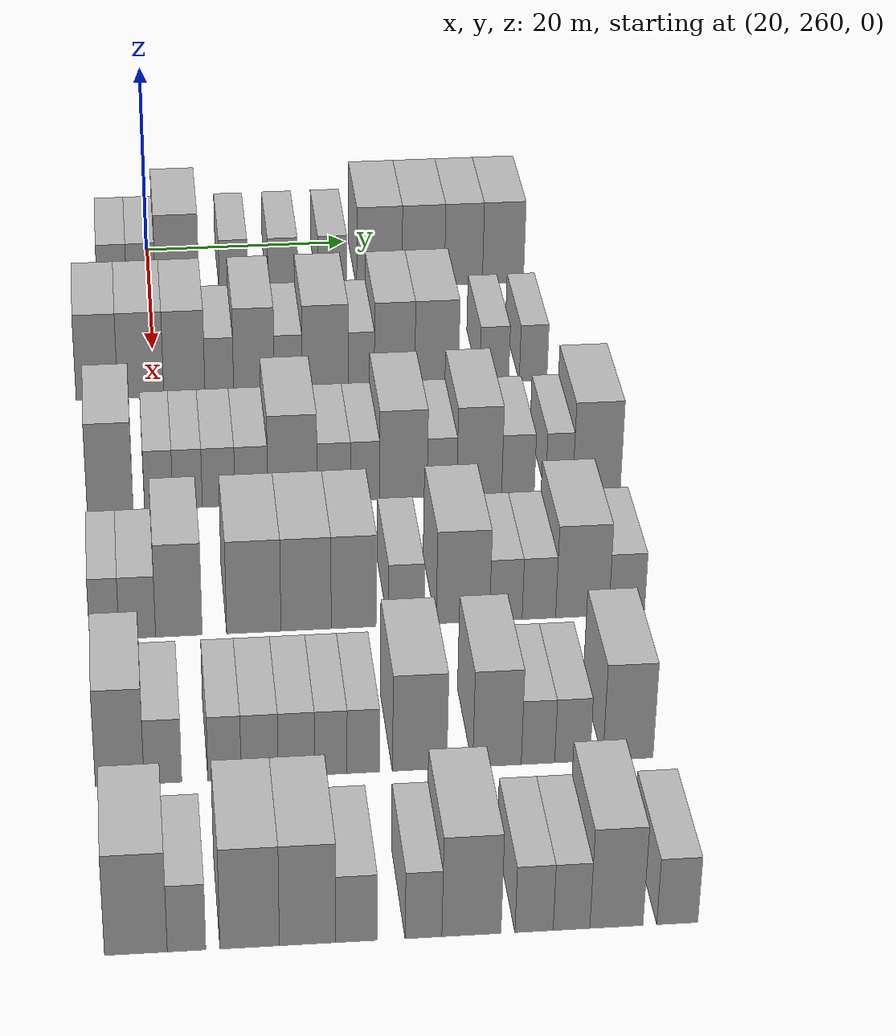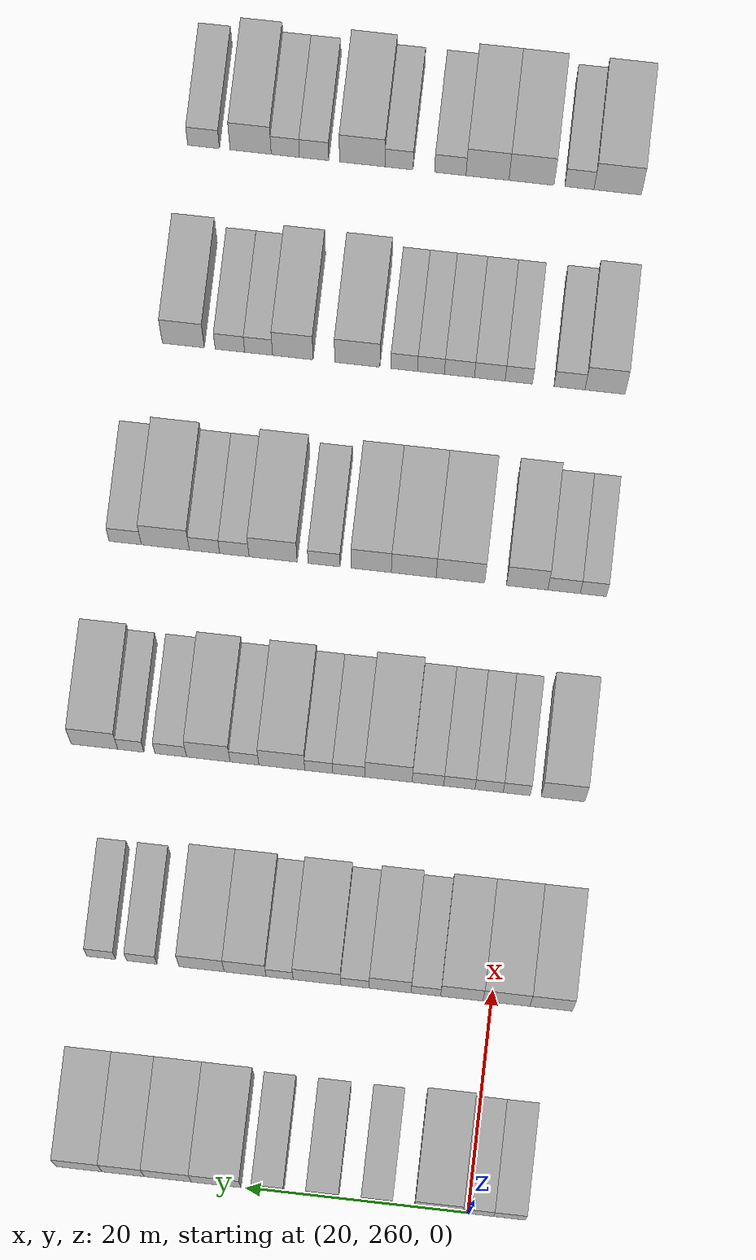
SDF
<sdf version="1.6">
 <world name="default">
  <model name="building_156">
   <static>1</static>
   <pose>25.0000 256.3741 0 0.000000 0.000000 0.000000</pose>
   <link name="link">
    <pose>0 0 3.00 0 0 0</pose>
    <collision name="collision"><geometry><box><size>10.0000 2.8606 6.0000</size></box></geometry></collision>
    <visual name="visual">
     <cast_shadows>0</cast_shadows>
     <geometry><box><size>10.0000 2.8606 6.0000</size></box></geometry>
     <material>
      <script>
       <uri>model://HANNAS_wall/materials/scripts</uri>
       <uri>model://HANNAS_wall/materials/textures</uri>
       <name>vrc/HANNAS_wall</name>
      </script>
     </material>
    </visual>
   </link>
  </model>
  <model name="building_157">
   <static>1</static>
   <pose>25.0000 259.2068 0 0.000000 0.000000 0.000000</pose>
   <link name="link">
    <pose>0 0 3.00 0 0 0</pose>
    <collision name="collision"><geometry><box><size>10.0000 2.8049 6.0000</size></box></geometry></collision>
    <visual name="visual">
     <cast_shadows>0</cast_shadows>
     <geometry><box><size>10.0000 2.8049 6.0000</size></box></geometry>
     <material>
      <script>
       <uri>model://HANNAS_wall/materials/scripts</uri>
       <uri>model://HANNAS_wall/materials/textures</uri>
       <name>vrc/HANNAS_wall</name>
      </script>
     </material>
    </visual>
   </link>
  </model>
  <model name="building_158">
   <static>1</static>
   <pose>25.0000 262.7423 0 0.000000 0.000000 0.000000</pose>
   <link name="link">
    <pose>0 0 4.50 0 0 0</pose>
    <collision name="collision"><geometry><box><size>10.0000 4.2661 9.0000</size></box></geometry></collision>
    <visual name="visual">
     <cast_shadows>0</cast_shadows>
     <geometry><box><size>10.0000 4.2661 9.0000</size></box></geometry>
     <material>
      <script>
       <uri>model://HANNAS_wall/materials/scripts</uri>
       <uri>model://HANNAS_wall/materials/textures</uri>
       <name>vrc/HANNAS_wall</name>
      </script>
     </material>
    </visual>
   </link>
  </model>
  <model name="building_159">
   <static>1</static>
   <pose>25.0000 268.2664 0 0.000000 0.000000 0.000000</pose>
   <link name="link">
    <pose>0 0 3.00 0 0 0</pose>
    <collision name="collision"><geometry><box><size>10.0000 2.7823 6.0000</size></box></geometry></collision>
    <visual name="visual">
     <cast_shadows>0</cast_shadows>
     <geometry><box><size>10.0000 2.7823 6.0000</size></box></geometry>
     <material>
      <script>
       <uri>model://HANNAS_wall/materials/scripts</uri>
       <uri>model://HANNAS_wall/materials/textures</uri>
       <name>vrc/HANNAS_wall</name>
      </script>
     </material>
    </visual>
   </link>
  </model>
  <model name="building_160">
   <static>1</static>
   <pose>25.0000 273.1148 0 0.000000 0.000000 0.000000</pose>
   <link name="link">
    <pose>0 0 3.00 0 0 0</pose>
    <collision name="collision"><geometry><box><size>10.0000 2.9144 6.0000</size></box></geometry></collision>
    <visual name="visual">
     <cast_shadows>0</cast_shadows>
     <geometry><box><size>10.0000 2.9144 6.0000</size></box></geometry>
     <material>
      <script>
       <uri>model://HANNAS_wall/materials/scripts</uri>
       <uri>model://HANNAS_wall/materials/textures</uri>
       <name>vrc/HANNAS_wall</name>
      </script>
     </material>
    </visual>
   </link>
  </model>
  <model name="building_161">
   <static>1</static>
   <pose>25.0000 277.9898 0 0.000000 0.000000 0.000000</pose>
   <link name="link">
    <pose>0 0 3.00 0 0 0</pose>
    <collision name="collision"><geometry><box><size>10.0000 2.8358 6.0000</size></box></geometry></collision>
    <visual name="visual">
     <cast_shadows>0</cast_shadows>
     <geometry><box><size>10.0000 2.8358 6.0000</size></box></geometry>
     <material>
      <script>
       <uri>model://HANNAS_wall/materials/scripts</uri>
       <uri>model://HANNAS_wall/materials/textures</uri>
       <name>vrc/HANNAS_wall</name>
      </script>
     </material>
    </visual>
   </link>
  </model>
  <model name="building_162">
   <static>1</static>
   <pose>25.0000 282.6385 0 0.000000 0.000000 0.000000</pose>
   <link name="link">
    <pose>0 0 4.50 0 0 0</pose>
    <collision name="collision"><geometry><box><size>10.0000 4.4615 9.0000</size></box></geometry></collision>
    <visual name="visual">
     <cast_shadows>0</cast_shadows>
     <geometry><box><size>10.0000 4.4615 9.0000</size></box></geometry>
     <material>
      <script>
       <uri>model://HANNAS_wall/materials/scripts</uri>
       <uri>model://HANNAS_wall/materials/textures</uri>
       <name>vrc/HANNAS_wall</name>
      </script>
     </material>
    </visual>
   </link>
  </model>
  <model name="building_163">
   <static>1</static>
   <pose>25.0000 286.9806 0 0.000000 0.000000 0.000000</pose>
   <link name="link">
    <pose>0 0 4.50 0 0 0</pose>
    <collision name="collision"><geometry><box><size>10.0000 4.2228 9.0000</size></box></geometry></collision>
    <visual name="visual">
     <cast_shadows>0</cast_shadows>
     <geometry><box><size>10.0000 4.2228 9.0000</size></box></geometry>
     <material>
      <script>
       <uri>model://HANNAS_wall/materials/scripts</uri>
       <uri>model://HANNAS_wall/materials/textures</uri>
       <name>vrc/HANNAS_wall</name>
      </script>
     </material>
    </visual>
   </link>
  </model>
  <model name="building_164">
   <static>1</static>
   <pose>25.0000 290.9815 0 0.000000 0.000000 0.000000</pose>
   <link name="link">
    <pose>0 0 4.50 0 0 0</pose>
    <collision name="collision"><geometry><box><size>10.0000 3.7791 9.0000</size></box></geometry></collision>
    <visual name="visual">
     <cast_shadows>0</cast_shadows>
     <geometry><box><size>10.0000 3.7791 9.0000</size></box></geometry>
     <material>
      <script>
       <uri>model://HANNAS_wall/materials/scripts</uri>
       <uri>model://HANNAS_wall/materials/textures</uri>
       <name>vrc/HANNAS_wall</name>
      </script>
     </material>
    </visual>
   </link>
  </model>
  <model name="building_165">
   <static>1</static>
   <pose>25.0000 294.9158 0 0.000000 0.000000 0.000000</pose>
   <link name="link">
    <pose>0 0 4.50 0 0 0</pose>
    <collision name="collision"><geometry><box><size>10.0000 4.0894 9.0000</size></box></geometry></collision>
    <visual name="visual">
     <cast_shadows>0</cast_shadows>
     <geometry><box><size>10.0000 4.0894 9.0000</size></box></geometry>
     <material>
      <script>
       <uri>model://HANNAS_wall/materials/scripts</uri>
       <uri>model://HANNAS_wall/materials/textures</uri>
       <name>vrc/HANNAS_wall</name>
      </script>
     </material>
    </visual>
   </link>
  </model>
  <model name="building_324">
   <static>1</static>
   <pose>44.0000 254.6581 0 0.000000 0.000000 0.000000</pose>
   <link name="link">
    <pose>0 0 4.50 0 0 0</pose>
    <collision name="collision"><geometry><box><size>10.0000 3.8413 9.0000</size></box></geometry></collision>
    <visual name="visual">
     <cast_shadows>0</cast_shadows>
     <geometry><box><size>10.0000 3.8413 9.0000</size></box></geometry>
     <material>
      <script>
       <uri>model://HANNAS_wall/materials/scripts</uri>
       <uri>model://HANNAS_wall/materials/textures</uri>
       <name>vrc/HANNAS_wall</name>
      </script>
     </material>
    </visual>
   </link>
  </model>
  <model name="building_325">
   <static>1</static>
   <pose>44.0000 258.7001 0 0.000000 0.000000 0.000000</pose>
   <link name="link">
    <pose>0 0 4.50 0 0 0</pose>
    <collision name="collision"><geometry><box><size>10.0000 4.2426 9.0000</size></box></geometry></collision>
    <visual name="visual">
     <cast_shadows>0</cast_shadows>
     <geometry><box><size>10.0000 4.2426 9.0000</size></box></geometry>
     <material>
      <script>
       <uri>model://HANNAS_wall/materials/scripts</uri>
       <uri>model://HANNAS_wall/materials/textures</uri>
       <name>vrc/HANNAS_wall</name>
      </script>
     </material>
    </visual>
   </link>
  </model>
  <model name="building_326">
   <static>1</static>
   <pose>44.0000 262.7328 0 0.000000 0.000000 0.000000</pose>
   <link name="link">
    <pose>0 0 4.50 0 0 0</pose>
    <collision name="collision"><geometry><box><size>10.0000 3.8230 9.0000</size></box></geometry></collision>
    <visual name="visual">
     <cast_shadows>0</cast_shadows>
     <geometry><box><size>10.0000 3.8230 9.0000</size></box></geometry>
     <material>
      <script>
       <uri>model://HANNAS_wall/materials/scripts</uri>
       <uri>model://HANNAS_wall/materials/textures</uri>
       <name>vrc/HANNAS_wall</name>
      </script>
     </material>
    </visual>
   </link>
  </model>
  <model name="building_327">
   <static>1</static>
   <pose>44.0000 265.9722 0 0.000000 0.000000 0.000000</pose>
   <link name="link">
    <pose>0 0 3.00 0 0 0</pose>
    <collision name="collision"><geometry><box><size>10.0000 2.6557 6.0000</size></box></geometry></collision>
    <visual name="visual">
     <cast_shadows>0</cast_shadows>
     <geometry><box><size>10.0000 2.6557 6.0000</size></box></geometry>
     <material>
      <script>
       <uri>model://HANNAS_wall/materials/scripts</uri>
       <uri>model://HANNAS_wall/materials/textures</uri>
       <name>vrc/HANNAS_wall</name>
      </script>
     </material>
    </visual>
   </link>
  </model>
  <model name="building_328">
   <static>1</static>
   <pose>44.0000 269.1884 0 0.000000 0.000000 0.000000</pose>
   <link name="link">
    <pose>0 0 4.50 0 0 0</pose>
    <collision name="collision"><geometry><box><size>10.0000 3.7768 9.0000</size></box></geometry></collision>
    <visual name="visual">
     <cast_shadows>0</cast_shadows>
     <geometry><box><size>10.0000 3.7768 9.0000</size></box></geometry>
     <material>
      <script>
       <uri>model://HANNAS_wall/materials/scripts</uri>
       <uri>model://HANNAS_wall/materials/textures</uri>
       <name>vrc/HANNAS_wall</name>
      </script>
     </material>
    </visual>
   </link>
  </model>
  <model name="building_329">
   <static>1</static>
   <pose>44.0000 272.3725 0 0.000000 0.000000 0.000000</pose>
   <link name="link">
    <pose>0 0 3.00 0 0 0</pose>
    <collision name="collision"><geometry><box><size>10.0000 2.5914 6.0000</size></box></geometry></collision>
    <visual name="visual">
     <cast_shadows>0</cast_shadows>
     <geometry><box><size>10.0000 2.5914 6.0000</size></box></geometry>
     <material>
      <script>
       <uri>model://HANNAS_wall/materials/scripts</uri>
       <uri>model://HANNAS_wall/materials/textures</uri>
       <name>vrc/HANNAS_wall</name>
      </script>
     </material>
    </visual>
   </link>
  </model>
  <model name="building_330">
   <static>1</static>
   <pose>44.0000 275.8079 0 0.000000 0.000000 0.000000</pose>
   <link name="link">
    <pose>0 0 4.50 0 0 0</pose>
    <collision name="collision"><geometry><box><size>10.0000 4.2794 9.0000</size></box></geometry></collision>
    <visual name="visual">
     <cast_shadows>0</cast_shadows>
     <geometry><box><size>10.0000 4.2794 9.0000</size></box></geometry>
     <material>
      <script>
       <uri>model://HANNAS_wall/materials/scripts</uri>
       <uri>model://HANNAS_wall/materials/textures</uri>
       <name>vrc/HANNAS_wall</name>
      </script>
     </material>
    </visual>
   </link>
  </model>
  <model name="building_331">
   <static>1</static>
   <pose>44.0000 279.1679 0 0.000000 0.000000 0.000000</pose>
   <link name="link">
    <pose>0 0 3.00 0 0 0</pose>
    <collision name="collision"><geometry><box><size>10.0000 2.4407 6.0000</size></box></geometry></collision>
    <visual name="visual">
     <cast_shadows>0</cast_shadows>
     <geometry><box><size>10.0000 2.4407 6.0000</size></box></geometry>
     <material>
      <script>
       <uri>model://HANNAS_wall/materials/scripts</uri>
       <uri>model://HANNAS_wall/materials/textures</uri>
       <name>vrc/HANNAS_wall</name>
      </script>
     </material>
    </visual>
   </link>
  </model>
  <model name="building_332">
   <static>1</static>
   <pose>44.0000 282.2762 0 0.000000 0.000000 0.000000</pose>
   <link name="link">
    <pose>0 0 4.50 0 0 0</pose>
    <collision name="collision"><geometry><box><size>10.0000 3.7759 9.0000</size></box></geometry></collision>
    <visual name="visual">
     <cast_shadows>0</cast_shadows>
     <geometry><box><size>10.0000 3.7759 9.0000</size></box></geometry>
     <material>
      <script>
       <uri>model://HANNAS_wall/materials/scripts</uri>
       <uri>model://HANNAS_wall/materials/textures</uri>
       <name>vrc/HANNAS_wall</name>
      </script>
     </material>
    </visual>
   </link>
  </model>
  <model name="building_333">
   <static>1</static>
   <pose>44.0000 286.2111 0 0.000000 0.000000 0.000000</pose>
   <link name="link">
    <pose>0 0 4.50 0 0 0</pose>
    <collision name="collision"><geometry><box><size>10.0000 4.0938 9.0000</size></box></geometry></collision>
    <visual name="visual">
     <cast_shadows>0</cast_shadows>
     <geometry><box><size>10.0000 4.0938 9.0000</size></box></geometry>
     <material>
      <script>
       <uri>model://HANNAS_wall/materials/scripts</uri>
       <uri>model://HANNAS_wall/materials/textures</uri>
       <name>vrc/HANNAS_wall</name>
      </script>
     </material>
    </visual>
   </link>
  </model>
  <model name="building_334">
   <static>1</static>
   <pose>44.0000 291.6262 0 0.000000 0.000000 0.000000</pose>
   <link name="link">
    <pose>0 0 3.00 0 0 0</pose>
    <collision name="collision"><geometry><box><size>10.0000 2.7365 6.0000</size></box></geometry></collision>
    <visual name="visual">
     <cast_shadows>0</cast_shadows>
     <geometry><box><size>10.0000 2.7365 6.0000</size></box></geometry>
     <material>
      <script>
       <uri>model://HANNAS_wall/materials/scripts</uri>
       <uri>model://HANNAS_wall/materials/textures</uri>
       <name>vrc/HANNAS_wall</name>
      </script>
     </material>
    </visual>
   </link>
  </model>
  <model name="building_335">
   <static>1</static>
   <pose>44.0000 295.2928 0 0.000000 0.000000 0.000000</pose>
   <link name="link">
    <pose>0 0 3.00 0 0 0</pose>
    <collision name="collision"><geometry><box><size>10.0000 2.5967 6.0000</size></box></geometry></collision>
    <visual name="visual">
     <cast_shadows>0</cast_shadows>
     <geometry><box><size>10.0000 2.5967 6.0000</size></box></geometry>
     <material>
      <script>
       <uri>model://HANNAS_wall/materials/scripts</uri>
       <uri>model://HANNAS_wall/materials/textures</uri>
       <name>vrc/HANNAS_wall</name>
      </script>
     </material>
    </visual>
   </link>
  </model>
  <model name="building_502">
   <static>1</static>
   <pose>63.0000 255.5855 0 0.000000 0.000000 0.000000</pose>
   <link name="link">
    <pose>0 0 4.50 0 0 0</pose>
    <collision name="collision"><geometry><box><size>10.0000 3.9786 9.0000</size></box></geometry></collision>
    <visual name="visual">
     <cast_shadows>0</cast_shadows>
     <geometry><box><size>10.0000 3.9786 9.0000</size></box></geometry>
     <material>
      <script>
       <uri>model://HANNAS_wall/materials/scripts</uri>
       <uri>model://HANNAS_wall/materials/textures</uri>
       <name>vrc/HANNAS_wall</name>
      </script>
     </material>
    </visual>
   </link>
  </model>
  <model name="building_503">
   <static>1</static>
   <pose>63.0000 259.8076 0 0.000000 0.000000 0.000000</pose>
   <link name="link">
    <pose>0 0 3.00 0 0 0</pose>
    <collision name="collision"><geometry><box><size>10.0000 2.4656 6.0000</size></box></geometry></collision>
    <visual name="visual">
     <cast_shadows>0</cast_shadows>
     <geometry><box><size>10.0000 2.4656 6.0000</size></box></geometry>
     <material>
      <script>
       <uri>model://HANNAS_wall/materials/scripts</uri>
       <uri>model://HANNAS_wall/materials/textures</uri>
       <name>vrc/HANNAS_wall</name>
      </script>
     </material>
    </visual>
   </link>
  </model>
  <model name="building_504">
   <static>1</static>
   <pose>63.0000 262.3215 0 0.000000 0.000000 0.000000</pose>
   <link name="link">
    <pose>0 0 3.00 0 0 0</pose>
    <collision name="collision"><geometry><box><size>10.0000 2.5620 6.0000</size></box></geometry></collision>
    <visual name="visual">
     <cast_shadows>0</cast_shadows>
     <geometry><box><size>10.0000 2.5620 6.0000</size></box></geometry>
     <material>
      <script>
       <uri>model://HANNAS_wall/materials/scripts</uri>
       <uri>model://HANNAS_wall/materials/textures</uri>
       <name>vrc/HANNAS_wall</name>
      </script>
     </material>
    </visual>
   </link>
  </model>
  <model name="building_505">
   <static>1</static>
   <pose>63.0000 265.0253 0 0.000000 0.000000 0.000000</pose>
   <link name="link">
    <pose>0 0 3.00 0 0 0</pose>
    <collision name="collision"><geometry><box><size>10.0000 2.8456 6.0000</size></box></geometry></collision>
    <visual name="visual">
     <cast_shadows>0</cast_shadows>
     <geometry><box><size>10.0000 2.8456 6.0000</size></box></geometry>
     <material>
      <script>
       <uri>model://HANNAS_wall/materials/scripts</uri>
       <uri>model://HANNAS_wall/materials/textures</uri>
       <name>vrc/HANNAS_wall</name>
      </script>
     </material>
    </visual>
   </link>
  </model>
  <model name="building_506">
   <static>1</static>
   <pose>63.0000 267.8822 0 0.000000 0.000000 0.000000</pose>
   <link name="link">
    <pose>0 0 3.00 0 0 0</pose>
    <collision name="collision"><geometry><box><size>10.0000 2.8682 6.0000</size></box></geometry></collision>
    <visual name="visual">
     <cast_shadows>0</cast_shadows>
     <geometry><box><size>10.0000 2.8682 6.0000</size></box></geometry>
     <material>
      <script>
       <uri>model://HANNAS_wall/materials/scripts</uri>
       <uri>model://HANNAS_wall/materials/textures</uri>
       <name>vrc/HANNAS_wall</name>
      </script>
     </material>
    </visual>
   </link>
  </model>
  <model name="building_507">
   <static>1</static>
   <pose>63.0000 271.4663 0 0.000000 0.000000 0.000000</pose>
   <link name="link">
    <pose>0 0 4.50 0 0 0</pose>
    <collision name="collision"><geometry><box><size>10.0000 4.3001 9.0000</size></box></geometry></collision>
    <visual name="visual">
     <cast_shadows>0</cast_shadows>
     <geometry><box><size>10.0000 4.3001 9.0000</size></box></geometry>
     <material>
      <script>
       <uri>model://HANNAS_wall/materials/scripts</uri>
       <uri>model://HANNAS_wall/materials/textures</uri>
       <name>vrc/HANNAS_wall</name>
      </script>
     </material>
    </visual>
   </link>
  </model>
  <model name="building_508">
   <static>1</static>
   <pose>63.0000 275.0858 0 0.000000 0.000000 0.000000</pose>
   <link name="link">
    <pose>0 0 3.00 0 0 0</pose>
    <collision name="collision"><geometry><box><size>10.0000 2.9388 6.0000</size></box></geometry></collision>
    <visual name="visual">
     <cast_shadows>0</cast_shadows>
     <geometry><box><size>10.0000 2.9388 6.0000</size></box></geometry>
     <material>
      <script>
       <uri>model://HANNAS_wall/materials/scripts</uri>
       <uri>model://HANNAS_wall/materials/textures</uri>
       <name>vrc/HANNAS_wall</name>
      </script>
     </material>
    </visual>
   </link>
  </model>
  <model name="building_509">
   <static>1</static>
   <pose>63.0000 277.8258 0 0.000000 0.000000 0.000000</pose>
   <link name="link">
    <pose>0 0 3.00 0 0 0</pose>
    <collision name="collision"><geometry><box><size>10.0000 2.5413 6.0000</size></box></geometry></collision>
    <visual name="visual">
     <cast_shadows>0</cast_shadows>
     <geometry><box><size>10.0000 2.5413 6.0000</size></box></geometry>
     <material>
      <script>
       <uri>model://HANNAS_wall/materials/scripts</uri>
       <uri>model://HANNAS_wall/materials/textures</uri>
       <name>vrc/HANNAS_wall</name>
      </script>
     </material>
    </visual>
   </link>
  </model>
  <model name="building_510">
   <static>1</static>
   <pose>63.0000 281.1874 0 0.000000 0.000000 0.000000</pose>
   <link name="link">
    <pose>0 0 4.50 0 0 0</pose>
    <collision name="collision"><geometry><box><size>10.0000 4.1818 9.0000</size></box></geometry></collision>
    <visual name="visual">
     <cast_shadows>0</cast_shadows>
     <geometry><box><size>10.0000 4.1818 9.0000</size></box></geometry>
     <material>
      <script>
       <uri>model://HANNAS_wall/materials/scripts</uri>
       <uri>model://HANNAS_wall/materials/textures</uri>
       <name>vrc/HANNAS_wall</name>
      </script>
     </material>
    </visual>
   </link>
  </model>
  <model name="building_511">
   <static>1</static>
   <pose>63.0000 284.5852 0 0.000000 0.000000 0.000000</pose>
   <link name="link">
    <pose>0 0 3.00 0 0 0</pose>
    <collision name="collision"><geometry><box><size>10.0000 2.6139 6.0000</size></box></geometry></collision>
    <visual name="visual">
     <cast_shadows>0</cast_shadows>
     <geometry><box><size>10.0000 2.6139 6.0000</size></box></geometry>
     <material>
      <script>
       <uri>model://HANNAS_wall/materials/scripts</uri>
       <uri>model://HANNAS_wall/materials/textures</uri>
       <name>vrc/HANNAS_wall</name>
      </script>
     </material>
    </visual>
   </link>
  </model>
  <model name="building_512">
   <static>1</static>
   <pose>63.0000 287.8807 0 0.000000 0.000000 0.000000</pose>
   <link name="link">
    <pose>0 0 4.50 0 0 0</pose>
    <collision name="collision"><geometry><box><size>10.0000 3.9770 9.0000</size></box></geometry></collision>
    <visual name="visual">
     <cast_shadows>0</cast_shadows>
     <geometry><box><size>10.0000 3.9770 9.0000</size></box></geometry>
     <material>
      <script>
       <uri>model://HANNAS_wall/materials/scripts</uri>
       <uri>model://HANNAS_wall/materials/textures</uri>
       <name>vrc/HANNAS_wall</name>
      </script>
     </material>
    </visual>
   </link>
  </model>
  <model name="building_513">
   <static>1</static>
   <pose>63.0000 291.3140 0 0.000000 0.000000 0.000000</pose>
   <link name="link">
    <pose>0 0 3.00 0 0 0</pose>
    <collision name="collision"><geometry><box><size>10.0000 2.8896 6.0000</size></box></geometry></collision>
    <visual name="visual">
     <cast_shadows>0</cast_shadows>
     <geometry><box><size>10.0000 2.8896 6.0000</size></box></geometry>
     <material>
      <script>
       <uri>model://HANNAS_wall/materials/scripts</uri>
       <uri>model://HANNAS_wall/materials/textures</uri>
       <name>vrc/HANNAS_wall</name>
      </script>
     </material>
    </visual>
   </link>
  </model>
  <model name="building_514">
   <static>1</static>
   <pose>63.0000 294.9615 0 0.000000 0.000000 0.000000</pose>
   <link name="link">
    <pose>0 0 3.00 0 0 0</pose>
    <collision name="collision"><geometry><box><size>10.0000 2.4054 6.0000</size></box></geometry></collision>
    <visual name="visual">
     <cast_shadows>0</cast_shadows>
     <geometry><box><size>10.0000 2.4054 6.0000</size></box></geometry>
     <material>
      <script>
       <uri>model://HANNAS_wall/materials/scripts</uri>
       <uri>model://HANNAS_wall/materials/textures</uri>
       <name>vrc/HANNAS_wall</name>
      </script>
     </material>
    </visual>
   </link>
  </model>
  <model name="building_515">
   <static>1</static>
   <pose>63.0000 298.2828 0 0.000000 0.000000 0.000000</pose>
   <link name="link">
    <pose>0 0 4.50 0 0 0</pose>
    <collision name="collision"><geometry><box><size>10.0000 4.2371 9.0000</size></box></geometry></collision>
    <visual name="visual">
     <cast_shadows>0</cast_shadows>
     <geometry><box><size>10.0000 4.2371 9.0000</size></box></geometry>
     <material>
      <script>
       <uri>model://HANNAS_wall/materials/scripts</uri>
       <uri>model://HANNAS_wall/materials/textures</uri>
       <name>vrc/HANNAS_wall</name>
      </script>
     </material>
    </visual>
   </link>
  </model>
  <model name="building_672">
   <static>1</static>
   <pose>82.0000 254.8240 0 0.000000 0.000000 0.000000</pose>
   <link name="link">
    <pose>0 0 3.00 0 0 0</pose>
    <collision name="collision"><geometry><box><size>10.0000 2.4000 6.0000</size></box></geometry></collision>
    <visual name="visual">
     <cast_shadows>0</cast_shadows>
     <geometry><box><size>10.0000 2.4000 6.0000</size></box></geometry>
     <material>
      <script>
       <uri>model://HANNAS_wall/materials/scripts</uri>
       <uri>model://HANNAS_wall/materials/textures</uri>
       <name>vrc/HANNAS_wall</name>
      </script>
     </material>
    </visual>
   </link>
  </model>
  <model name="building_673">
   <static>1</static>
   <pose>82.0000 257.5086 0 0.000000 0.000000 0.000000</pose>
   <link name="link">
    <pose>0 0 3.00 0 0 0</pose>
    <collision name="collision"><geometry><box><size>10.0000 2.9692 6.0000</size></box></geometry></collision>
    <visual name="visual">
     <cast_shadows>0</cast_shadows>
     <geometry><box><size>10.0000 2.9692 6.0000</size></box></geometry>
     <material>
      <script>
       <uri>model://HANNAS_wall/materials/scripts</uri>
       <uri>model://HANNAS_wall/materials/textures</uri>
       <name>vrc/HANNAS_wall</name>
      </script>
     </material>
    </visual>
   </link>
  </model>
  <model name="building_674">
   <static>1</static>
   <pose>82.0000 260.8905 0 0.000000 0.000000 0.000000</pose>
   <link name="link">
    <pose>0 0 4.50 0 0 0</pose>
    <collision name="collision"><geometry><box><size>10.0000 3.7947 9.0000</size></box></geometry></collision>
    <visual name="visual">
     <cast_shadows>0</cast_shadows>
     <geometry><box><size>10.0000 3.7947 9.0000</size></box></geometry>
     <material>
      <script>
       <uri>model://HANNAS_wall/materials/scripts</uri>
       <uri>model://HANNAS_wall/materials/textures</uri>
       <name>vrc/HANNAS_wall</name>
      </script>
     </material>
    </visual>
   </link>
  </model>
  <model name="building_675">
   <static>1</static>
   <pose>82.0000 267.0078 0 0.000000 0.000000 0.000000</pose>
   <link name="link">
    <pose>0 0 4.50 0 0 0</pose>
    <collision name="collision"><geometry><box><size>10.0000 4.4399 9.0000</size></box></geometry></collision>
    <visual name="visual">
     <cast_shadows>0</cast_shadows>
     <geometry><box><size>10.0000 4.4399 9.0000</size></box></geometry>
     <material>
      <script>
       <uri>model://HANNAS_wall/materials/scripts</uri>
       <uri>model://HANNAS_wall/materials/textures</uri>
       <name>vrc/HANNAS_wall</name>
      </script>
     </material>
    </visual>
   </link>
  </model>
  <model name="building_676">
   <static>1</static>
   <pose>82.0000 271.2885 0 0.000000 0.000000 0.000000</pose>
   <link name="link">
    <pose>0 0 4.50 0 0 0</pose>
    <collision name="collision"><geometry><box><size>10.0000 4.1214 9.0000</size></box></geometry></collision>
    <visual name="visual">
     <cast_shadows>0</cast_shadows>
     <geometry><box><size>10.0000 4.1214 9.0000</size></box></geometry>
     <material>
      <script>
       <uri>model://HANNAS_wall/materials/scripts</uri>
       <uri>model://HANNAS_wall/materials/textures</uri>
       <name>vrc/HANNAS_wall</name>
      </script>
     </material>
    </visual>
   </link>
  </model>
  <model name="building_677">
   <static>1</static>
   <pose>82.0000 275.1957 0 0.000000 0.000000 0.000000</pose>
   <link name="link">
    <pose>0 0 4.50 0 0 0</pose>
    <collision name="collision"><geometry><box><size>10.0000 3.6931 9.0000</size></box></geometry></collision>
    <visual name="visual">
     <cast_shadows>0</cast_shadows>
     <geometry><box><size>10.0000 3.6931 9.0000</size></box></geometry>
     <material>
      <script>
       <uri>model://HANNAS_wall/materials/scripts</uri>
       <uri>model://HANNAS_wall/materials/textures</uri>
       <name>vrc/HANNAS_wall</name>
      </script>
     </material>
    </visual>
   </link>
  </model>
  <model name="building_678">
   <static>1</static>
   <pose>82.0000 279.5148 0 0.000000 0.000000 0.000000</pose>
   <link name="link">
    <pose>0 0 3.00 0 0 0</pose>
    <collision name="collision"><geometry><box><size>10.0000 2.9449 6.0000</size></box></geometry></collision>
    <visual name="visual">
     <cast_shadows>0</cast_shadows>
     <geometry><box><size>10.0000 2.9449 6.0000</size></box></geometry>
     <material>
      <script>
       <uri>model://HANNAS_wall/materials/scripts</uri>
       <uri>model://HANNAS_wall/materials/textures</uri>
       <name>vrc/HANNAS_wall</name>
      </script>
     </material>
    </visual>
   </link>
  </model>
  <model name="building_679">
   <static>1</static>
   <pose>82.0000 284.1990 0 0.000000 0.000000 0.000000</pose>
   <link name="link">
    <pose>0 0 4.50 0 0 0</pose>
    <collision name="collision"><geometry><box><size>10.0000 4.4236 9.0000</size></box></geometry></collision>
    <visual name="visual">
     <cast_shadows>0</cast_shadows>
     <geometry><box><size>10.0000 4.4236 9.0000</size></box></geometry>
     <material>
      <script>
       <uri>model://HANNAS_wall/materials/scripts</uri>
       <uri>model://HANNAS_wall/materials/textures</uri>
       <name>vrc/HANNAS_wall</name>
      </script>
     </material>
    </visual>
   </link>
  </model>
  <model name="building_680">
   <static>1</static>
   <pose>82.0000 287.7597 0 0.000000 0.000000 0.000000</pose>
   <link name="link">
    <pose>0 0 3.00 0 0 0</pose>
    <collision name="collision"><geometry><box><size>10.0000 2.6977 6.0000</size></box></geometry></collision>
    <visual name="visual">
     <cast_shadows>0</cast_shadows>
     <geometry><box><size>10.0000 2.6977 6.0000</size></box></geometry>
     <material>
      <script>
       <uri>model://HANNAS_wall/materials/scripts</uri>
       <uri>model://HANNAS_wall/materials/textures</uri>
       <name>vrc/HANNAS_wall</name>
      </script>
     </material>
    </visual>
   </link>
  </model>
  <model name="building_681">
   <static>1</static>
   <pose>82.0000 290.5003 0 0.000000 0.000000 0.000000</pose>
   <link name="link">
    <pose>0 0 3.00 0 0 0</pose>
    <collision name="collision"><geometry><box><size>10.0000 2.7834 6.0000</size></box></geometry></collision>
    <visual name="visual">
     <cast_shadows>0</cast_shadows>
     <geometry><box><size>10.0000 2.7834 6.0000</size></box></geometry>
     <material>
      <script>
       <uri>model://HANNAS_wall/materials/scripts</uri>
       <uri>model://HANNAS_wall/materials/textures</uri>
       <name>vrc/HANNAS_wall</name>
      </script>
     </material>
    </visual>
   </link>
  </model>
  <model name="building_682">
   <static>1</static>
   <pose>82.0000 294.0993 0 0.000000 0.000000 0.000000</pose>
   <link name="link">
    <pose>0 0 4.50 0 0 0</pose>
    <collision name="collision"><geometry><box><size>10.0000 4.4147 9.0000</size></box></geometry></collision>
    <visual name="visual">
     <cast_shadows>0</cast_shadows>
     <geometry><box><size>10.0000 4.4147 9.0000</size></box></geometry>
     <material>
      <script>
       <uri>model://HANNAS_wall/materials/scripts</uri>
       <uri>model://HANNAS_wall/materials/textures</uri>
       <name>vrc/HANNAS_wall</name>
      </script>
     </material>
    </visual>
   </link>
  </model>
  <model name="building_683">
   <static>1</static>
   <pose>82.0000 297.7913 0 0.000000 0.000000 0.000000</pose>
   <link name="link">
    <pose>0 0 3.00 0 0 0</pose>
    <collision name="collision"><geometry><box><size>10.0000 2.9692 6.0000</size></box></geometry></collision>
    <visual name="visual">
     <cast_shadows>0</cast_shadows>
     <geometry><box><size>10.0000 2.9692 6.0000</size></box></geometry>
     <material>
      <script>
       <uri>model://HANNAS_wall/materials/scripts</uri>
       <uri>model://HANNAS_wall/materials/textures</uri>
       <name>vrc/HANNAS_wall</name>
      </script>
     </material>
    </visual>
   </link>
  </model>
  <model name="building_856">
   <static>1</static>
   <pose>101.0000 255.7327 0 0.000000 0.000000 0.000000</pose>
   <link name="link">
    <pose>0 0 4.50 0 0 0</pose>
    <collision name="collision"><geometry><box><size>10.0000 3.6957 9.0000</size></box></geometry></collision>
    <visual name="visual">
     <cast_shadows>0</cast_shadows>
     <geometry><box><size>10.0000 3.6957 9.0000</size></box></geometry>
     <material>
      <script>
       <uri>model://HANNAS_wall/materials/scripts</uri>
       <uri>model://HANNAS_wall/materials/textures</uri>
       <name>vrc/HANNAS_wall</name>
      </script>
     </material>
    </visual>
   </link>
  </model>
  <model name="building_857">
   <static>1</static>
   <pose>101.0000 259.0080 0 0.000000 0.000000 0.000000</pose>
   <link name="link">
    <pose>0 0 3.00 0 0 0</pose>
    <collision name="collision"><geometry><box><size>10.0000 2.8548 6.0000</size></box></geometry></collision>
    <visual name="visual">
     <cast_shadows>0</cast_shadows>
     <geometry><box><size>10.0000 2.8548 6.0000</size></box></geometry>
     <material>
      <script>
       <uri>model://HANNAS_wall/materials/scripts</uri>
       <uri>model://HANNAS_wall/materials/textures</uri>
       <name>vrc/HANNAS_wall</name>
      </script>
     </material>
    </visual>
   </link>
  </model>
  <model name="building_858">
   <static>1</static>
   <pose>101.0000 263.7002 0 0.000000 0.000000 0.000000</pose>
   <link name="link">
    <pose>0 0 3.00 0 0 0</pose>
    <collision name="collision"><geometry><box><size>10.0000 2.5296 6.0000</size></box></geometry></collision>
    <visual name="visual">
     <cast_shadows>0</cast_shadows>
     <geometry><box><size>10.0000 2.5296 6.0000</size></box></geometry>
     <material>
      <script>
       <uri>model://HANNAS_wall/materials/scripts</uri>
       <uri>model://HANNAS_wall/materials/textures</uri>
       <name>vrc/HANNAS_wall</name>
      </script>
     </material>
    </visual>
   </link>
  </model>
  <model name="building_859">
   <static>1</static>
   <pose>101.0000 266.3807 0 0.000000 0.000000 0.000000</pose>
   <link name="link">
    <pose>0 0 3.00 0 0 0</pose>
    <collision name="collision"><geometry><box><size>10.0000 2.8314 6.0000</size></box></geometry></collision>
    <visual name="visual">
     <cast_shadows>0</cast_shadows>
     <geometry><box><size>10.0000 2.8314 6.0000</size></box></geometry>
     <material>
      <script>
       <uri>model://HANNAS_wall/materials/scripts</uri>
       <uri>model://HANNAS_wall/materials/textures</uri>
       <name>vrc/HANNAS_wall</name>
      </script>
     </material>
    </visual>
   </link>
  </model>
  <model name="building_860">
   <static>1</static>
   <pose>101.0000 269.1838 0 0.000000 0.000000 0.000000</pose>
   <link name="link">
    <pose>0 0 3.00 0 0 0</pose>
    <collision name="collision"><geometry><box><size>10.0000 2.7746 6.0000</size></box></geometry></collision>
    <visual name="visual">
     <cast_shadows>0</cast_shadows>
     <geometry><box><size>10.0000 2.7746 6.0000</size></box></geometry>
     <material>
      <script>
       <uri>model://HANNAS_wall/materials/scripts</uri>
       <uri>model://HANNAS_wall/materials/textures</uri>
       <name>vrc/HANNAS_wall</name>
      </script>
     </material>
    </visual>
   </link>
  </model>
  <model name="building_861">
   <static>1</static>
   <pose>101.0000 271.8156 0 0.000000 0.000000 0.000000</pose>
   <link name="link">
    <pose>0 0 3.00 0 0 0</pose>
    <collision name="collision"><geometry><box><size>10.0000 2.4891 6.0000</size></box></geometry></collision>
    <visual name="visual">
     <cast_shadows>0</cast_shadows>
     <geometry><box><size>10.0000 2.4891 6.0000</size></box></geometry>
     <material>
      <script>
       <uri>model://HANNAS_wall/materials/scripts</uri>
       <uri>model://HANNAS_wall/materials/textures</uri>
       <name>vrc/HANNAS_wall</name>
      </script>
     </material>
    </visual>
   </link>
  </model>
  <model name="building_862">
   <static>1</static>
   <pose>101.0000 274.2976 0 0.000000 0.000000 0.000000</pose>
   <link name="link">
    <pose>0 0 3.00 0 0 0</pose>
    <collision name="collision"><geometry><box><size>10.0000 2.4749 6.0000</size></box></geometry></collision>
    <visual name="visual">
     <cast_shadows>0</cast_shadows>
     <geometry><box><size>10.0000 2.4749 6.0000</size></box></geometry>
     <material>
      <script>
       <uri>model://HANNAS_wall/materials/scripts</uri>
       <uri>model://HANNAS_wall/materials/textures</uri>
       <name>vrc/HANNAS_wall</name>
      </script>
     </material>
    </visual>
   </link>
  </model>
  <model name="building_863">
   <static>1</static>
   <pose>101.0000 278.6259 0 0.000000 0.000000 0.000000</pose>
   <link name="link">
    <pose>0 0 4.50 0 0 0</pose>
    <collision name="collision"><geometry><box><size>10.0000 4.1817 9.0000</size></box></geometry></collision>
    <visual name="visual">
     <cast_shadows>0</cast_shadows>
     <geometry><box><size>10.0000 4.1817 9.0000</size></box></geometry>
     <material>
      <script>
       <uri>model://HANNAS_wall/materials/scripts</uri>
       <uri>model://HANNAS_wall/materials/textures</uri>
       <name>vrc/HANNAS_wall</name>
      </script>
     </material>
    </visual>
   </link>
  </model>
  <model name="building_864">
   <static>1</static>
   <pose>101.0000 284.5907 0 0.000000 0.000000 0.000000</pose>
   <link name="link">
    <pose>0 0 4.50 0 0 0</pose>
    <collision name="collision"><geometry><box><size>10.0000 3.7479 9.0000</size></box></geometry></collision>
    <visual name="visual">
     <cast_shadows>0</cast_shadows>
     <geometry><box><size>10.0000 3.7479 9.0000</size></box></geometry>
     <material>
      <script>
       <uri>model://HANNAS_wall/materials/scripts</uri>
       <uri>model://HANNAS_wall/materials/textures</uri>
       <name>vrc/HANNAS_wall</name>
      </script>
     </material>
    </visual>
   </link>
  </model>
  <model name="building_865">
   <static>1</static>
   <pose>101.0000 287.7601 0 0.000000 0.000000 0.000000</pose>
   <link name="link">
    <pose>0 0 3.00 0 0 0</pose>
    <collision name="collision"><geometry><box><size>10.0000 2.5909 6.0000</size></box></geometry></collision>
    <visual name="visual">
     <cast_shadows>0</cast_shadows>
     <geometry><box><size>10.0000 2.5909 6.0000</size></box></geometry>
     <material>
      <script>
       <uri>model://HANNAS_wall/materials/scripts</uri>
       <uri>model://HANNAS_wall/materials/textures</uri>
       <name>vrc/HANNAS_wall</name>
      </script>
     </material>
    </visual>
   </link>
  </model>
  <model name="building_866">
   <static>1</static>
   <pose>101.0000 290.4217 0 0.000000 0.000000 0.000000</pose>
   <link name="link">
    <pose>0 0 3.00 0 0 0</pose>
    <collision name="collision"><geometry><box><size>10.0000 2.7322 6.0000</size></box></geometry></collision>
    <visual name="visual">
     <cast_shadows>0</cast_shadows>
     <geometry><box><size>10.0000 2.7322 6.0000</size></box></geometry>
     <material>
      <script>
       <uri>model://HANNAS_wall/materials/scripts</uri>
       <uri>model://HANNAS_wall/materials/textures</uri>
       <name>vrc/HANNAS_wall</name>
      </script>
     </material>
    </visual>
   </link>
  </model>
  <model name="building_867">
   <static>1</static>
   <pose>101.0000 294.7334 0 0.000000 0.000000 0.000000</pose>
   <link name="link">
    <pose>0 0 4.50 0 0 0</pose>
    <collision name="collision"><geometry><box><size>10.0000 3.8912 9.0000</size></box></geometry></collision>
    <visual name="visual">
     <cast_shadows>0</cast_shadows>
     <geometry><box><size>10.0000 3.8912 9.0000</size></box></geometry>
     <material>
      <script>
       <uri>model://HANNAS_wall/materials/scripts</uri>
       <uri>model://HANNAS_wall/materials/textures</uri>
       <name>vrc/HANNAS_wall</name>
      </script>
     </material>
    </visual>
   </link>
  </model>
  <model name="building_1039">
   <static>1</static>
   <pose>120.0000 256.5262 0 0.000000 0.000000 0.000000</pose>
   <link name="link">
    <pose>0 0 4.50 0 0 0</pose>
    <collision name="collision"><geometry><box><size>10.0000 4.4128 9.0000</size></box></geometry></collision>
    <visual name="visual">
     <cast_shadows>0</cast_shadows>
     <geometry><box><size>10.0000 4.4128 9.0000</size></box></geometry>
     <material>
      <script>
       <uri>model://HANNAS_wall/materials/scripts</uri>
       <uri>model://HANNAS_wall/materials/textures</uri>
       <name>vrc/HANNAS_wall</name>
      </script>
     </material>
    </visual>
   </link>
  </model>
  <model name="building_1040">
   <static>1</static>
   <pose>120.0000 260.0928 0 0.000000 0.000000 0.000000</pose>
   <link name="link">
    <pose>0 0 3.00 0 0 0</pose>
    <collision name="collision"><geometry><box><size>10.0000 2.7203 6.0000</size></box></geometry></collision>
    <visual name="visual">
     <cast_shadows>0</cast_shadows>
     <geometry><box><size>10.0000 2.7203 6.0000</size></box></geometry>
     <material>
      <script>
       <uri>model://HANNAS_wall/materials/scripts</uri>
       <uri>model://HANNAS_wall/materials/textures</uri>
       <name>vrc/HANNAS_wall</name>
      </script>
     </material>
    </visual>
   </link>
  </model>
  <model name="building_1041">
   <static>1</static>
   <pose>120.0000 264.5542 0 0.000000 0.000000 0.000000</pose>
   <link name="link">
    <pose>0 0 4.50 0 0 0</pose>
    <collision name="collision"><geometry><box><size>10.0000 4.2026 9.0000</size></box></geometry></collision>
    <visual name="visual">
     <cast_shadows>0</cast_shadows>
     <geometry><box><size>10.0000 4.2026 9.0000</size></box></geometry>
     <material>
      <script>
       <uri>model://HANNAS_wall/materials/scripts</uri>
       <uri>model://HANNAS_wall/materials/textures</uri>
       <name>vrc/HANNAS_wall</name>
      </script>
     </material>
    </visual>
   </link>
  </model>
  <model name="building_1042">
   <static>1</static>
   <pose>120.0000 268.6562 0 0.000000 0.000000 0.000000</pose>
   <link name="link">
    <pose>0 0 4.50 0 0 0</pose>
    <collision name="collision"><geometry><box><size>10.0000 4.0014 9.0000</size></box></geometry></collision>
    <visual name="visual">
     <cast_shadows>0</cast_shadows>
     <geometry><box><size>10.0000 4.0014 9.0000</size></box></geometry>
     <material>
      <script>
       <uri>model://HANNAS_wall/materials/scripts</uri>
       <uri>model://HANNAS_wall/materials/textures</uri>
       <name>vrc/HANNAS_wall</name>
      </script>
     </material>
    </visual>
   </link>
  </model>
  <model name="building_1043">
   <static>1</static>
   <pose>120.0000 272.1231 0 0.000000 0.000000 0.000000</pose>
   <link name="link">
    <pose>0 0 3.00 0 0 0</pose>
    <collision name="collision"><geometry><box><size>10.0000 2.9323 6.0000</size></box></geometry></collision>
    <visual name="visual">
     <cast_shadows>0</cast_shadows>
     <geometry><box><size>10.0000 2.9323 6.0000</size></box></geometry>
     <material>
      <script>
       <uri>model://HANNAS_wall/materials/scripts</uri>
       <uri>model://HANNAS_wall/materials/textures</uri>
       <name>vrc/HANNAS_wall</name>
      </script>
     </material>
    </visual>
   </link>
  </model>
  <model name="building_1044">
   <static>1</static>
   <pose>120.0000 276.9024 0 0.000000 0.000000 0.000000</pose>
   <link name="link">
    <pose>0 0 3.00 0 0 0</pose>
    <collision name="collision"><geometry><box><size>10.0000 2.6263 6.0000</size></box></geometry></collision>
    <visual name="visual">
     <cast_shadows>0</cast_shadows>
     <geometry><box><size>10.0000 2.6263 6.0000</size></box></geometry>
     <material>
      <script>
       <uri>model://HANNAS_wall/materials/scripts</uri>
       <uri>model://HANNAS_wall/materials/textures</uri>
       <name>vrc/HANNAS_wall</name>
      </script>
     </material>
    </visual>
   </link>
  </model>
  <model name="building_1045">
   <static>1</static>
   <pose>120.0000 280.3310 0 0.000000 0.000000 0.000000</pose>
   <link name="link">
    <pose>0 0 4.50 0 0 0</pose>
    <collision name="collision"><geometry><box><size>10.0000 4.2310 9.0000</size></box></geometry></collision>
    <visual name="visual">
     <cast_shadows>0</cast_shadows>
     <geometry><box><size>10.0000 4.2310 9.0000</size></box></geometry>
     <material>
      <script>
       <uri>model://HANNAS_wall/materials/scripts</uri>
       <uri>model://HANNAS_wall/materials/textures</uri>
       <name>vrc/HANNAS_wall</name>
      </script>
     </material>
    </visual>
   </link>
  </model>
  <model name="building_1046">
   <static>1</static>
   <pose>120.0000 284.8175 0 0.000000 0.000000 0.000000</pose>
   <link name="link">
    <pose>0 0 3.00 0 0 0</pose>
    <collision name="collision"><geometry><box><size>10.0000 2.7419 6.0000</size></box></geometry></collision>
    <visual name="visual">
     <cast_shadows>0</cast_shadows>
     <geometry><box><size>10.0000 2.7419 6.0000</size></box></geometry>
     <material>
      <script>
       <uri>model://HANNAS_wall/materials/scripts</uri>
       <uri>model://HANNAS_wall/materials/textures</uri>
       <name>vrc/HANNAS_wall</name>
      </script>
     </material>
    </visual>
   </link>
  </model>
  <model name="building_1047">
   <static>1</static>
   <pose>120.0000 287.5047 0 0.000000 0.000000 0.000000</pose>
   <link name="link">
    <pose>0 0 3.00 0 0 0</pose>
    <collision name="collision"><geometry><box><size>10.0000 2.6325 6.0000</size></box></geometry></collision>
    <visual name="visual">
     <cast_shadows>0</cast_shadows>
     <geometry><box><size>10.0000 2.6325 6.0000</size></box></geometry>
     <material>
      <script>
       <uri>model://HANNAS_wall/materials/scripts</uri>
       <uri>model://HANNAS_wall/materials/textures</uri>
       <name>vrc/HANNAS_wall</name>
      </script>
     </material>
    </visual>
   </link>
  </model>
  <model name="building_1048">
   <static>1</static>
   <pose>120.0000 290.7349 0 0.000000 0.000000 0.000000</pose>
   <link name="link">
    <pose>0 0 4.50 0 0 0</pose>
    <collision name="collision"><geometry><box><size>10.0000 3.8279 9.0000</size></box></geometry></collision>
    <visual name="visual">
     <cast_shadows>0</cast_shadows>
     <geometry><box><size>10.0000 3.8279 9.0000</size></box></geometry>
     <material>
      <script>
       <uri>model://HANNAS_wall/materials/scripts</uri>
       <uri>model://HANNAS_wall/materials/textures</uri>
       <name>vrc/HANNAS_wall</name>
      </script>
     </material>
    </visual>
   </link>
  </model>
  <model name="building_1049">
   <static>1</static>
   <pose>120.0000 295.1287 0 0.000000 0.000000 0.000000</pose>
   <link name="link">
    <pose>0 0 3.00 0 0 0</pose>
    <collision name="collision"><geometry><box><size>10.0000 2.9596 6.0000</size></box></geometry></collision>
    <visual name="visual">
     <cast_shadows>0</cast_shadows>
     <geometry><box><size>10.0000 2.9596 6.0000</size></box></geometry>
     <material>
      <script>
       <uri>model://HANNAS_wall/materials/scripts</uri>
       <uri>model://HANNAS_wall/materials/textures</uri>
       <name>vrc/HANNAS_wall</name>
      </script>
     </material>
    </visual>
   </link>
  </model>
 </world>
</sdf>
